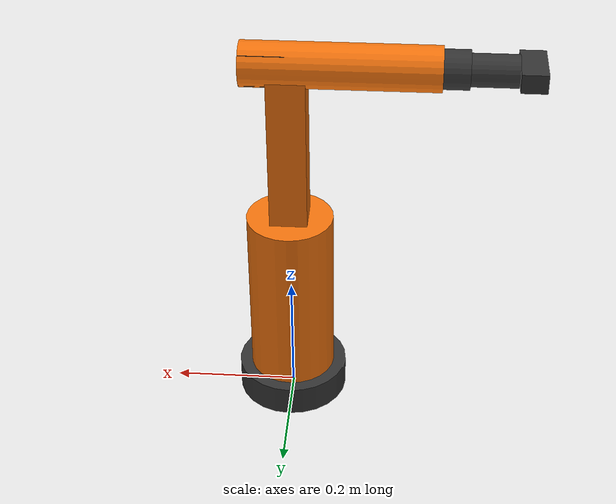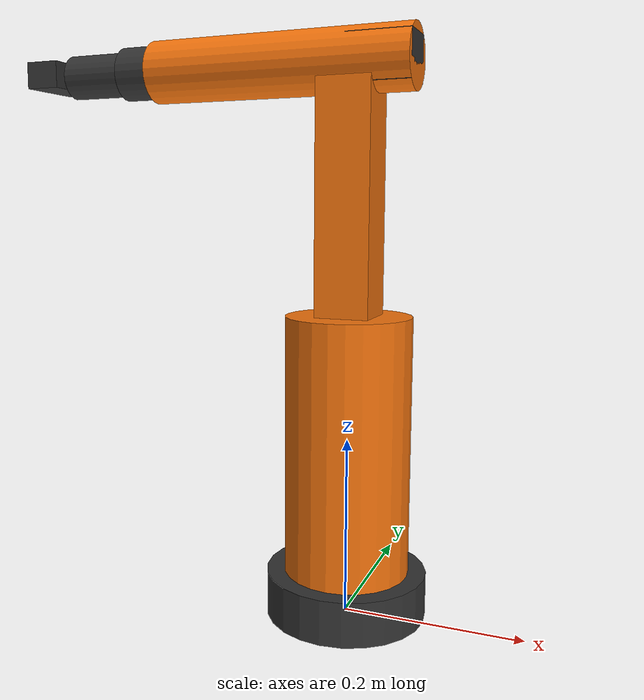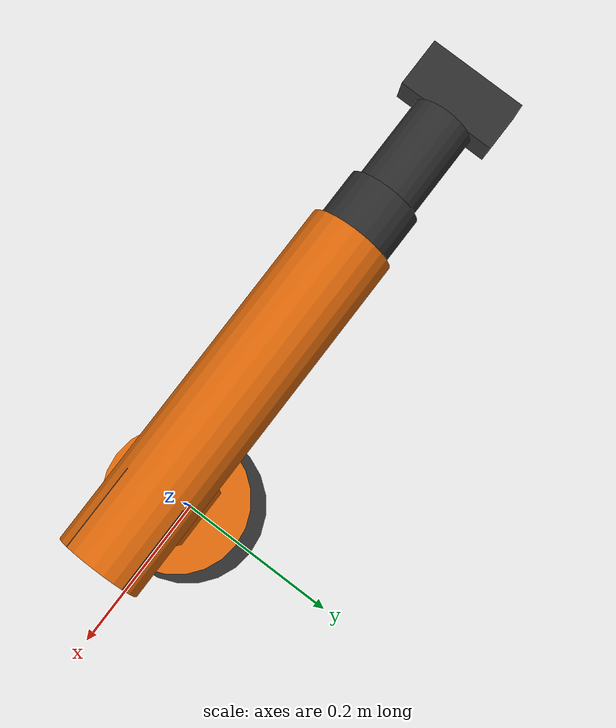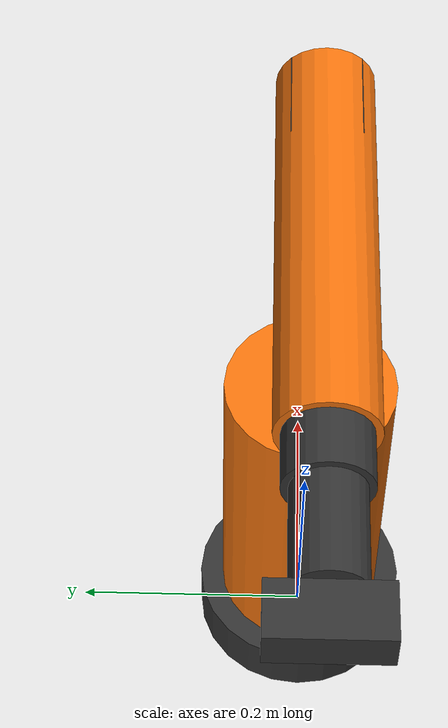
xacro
<?xml version="1.0"?>
<robot name="irb120" xmlns:xacro="http://www.ros.org/wiki/xacro">

  <material name="abb_orange">
    <color rgba="0.95 0.45 0.05 1.0"/>
  </material>
  <material name="dark_grey">
    <color rgba="0.2 0.2 0.2 1.0"/>
  </material>

  <link name="base_link">
    <visual>
      <geometry><cylinder radius="0.09" length="0.05"/></geometry>
      <origin xyz="0 0 0.025" rpy="0 0 0"/>
      <material name="dark_grey"/>
    </visual>
    <collision>
      <geometry><cylinder radius="0.09" length="0.05"/></geometry>
      <origin xyz="0 0 0.025" rpy="0 0 0"/>
    </collision>
    <inertial>
      <mass value="2.0"/>
      <origin xyz="0 0 0.025"/>
      <inertia ixx="0.01" ixy="0" ixz="0" iyy="0.01" iyz="0" izz="0.01"/>
    </inertial>
  </link>

  <link name="link_1">
    <visual>
      <geometry><cylinder radius="0.07" length="0.29"/></geometry>
      <origin xyz="0 0 0.145" rpy="0 0 0"/>
      <material name="abb_orange"/>
    </visual>
    <collision>
      <geometry><cylinder radius="0.07" length="0.29"/></geometry>
      <origin xyz="0 0 0.145" rpy="0 0 0"/>
    </collision>
    <inertial>
      <mass value="3.0"/>
      <origin xyz="0 0 0.145"/>
      <inertia ixx="0.02" ixy="0" ixz="0" iyy="0.02" iyz="0" izz="0.01"/>
    </inertial>
  </link>

  <joint name="joint_1" type="revolute">
    <parent link="base_link"/>
    <child link="link_1"/>
    <origin xyz="0 0 0.05" rpy="0 0 0"/>
    <axis xyz="0 0 1"/>
    <limit lower="-2.87" upper="2.87" effort="50" velocity="4.36"/>
  </joint>

  <link name="link_2">
    <visual>
      <geometry><box size="0.27 0.06 0.06"/></geometry>
      <origin xyz="0.135 0 0" rpy="0 0 0"/>
      <material name="abb_orange"/>
    </visual>
    <collision>
      <geometry><box size="0.27 0.06 0.06"/></geometry>
      <origin xyz="0.135 0 0" rpy="0 0 0"/>
    </collision>
    <inertial>
      <mass value="2.5"/>
      <origin xyz="0.135 0 0"/>
      <inertia ixx="0.01" ixy="0" ixz="0" iyy="0.02" iyz="0" izz="0.02"/>
    </inertial>
  </link>

  <joint name="joint_2" type="revolute">
    <parent link="link_1"/>
    <child link="link_2"/>
    <origin xyz="0 0 0.29" rpy="0 -1.5708 0"/>
    <axis xyz="0 1 0"/>
    <limit lower="-1.919" upper="1.919" effort="50" velocity="4.36"/>
  </joint>

  <link name="link_3">
    <visual>
      <geometry><box size="0.07 0.05 0.05"/></geometry>
      <origin xyz="0.035 0 0" rpy="0 0 0"/>
      <material name="dark_grey"/>
    </visual>
    <collision>
      <geometry><box size="0.07 0.05 0.05"/></geometry>
      <origin xyz="0.035 0 0" rpy="0 0 0"/>
    </collision>
    <inertial>
      <mass value="1.5"/>
      <origin xyz="0.035 0 0"/>
      <inertia ixx="0.005" ixy="0" ixz="0" iyy="0.01" iyz="0" izz="0.01"/>
    </inertial>
  </link>

  <joint name="joint_3" type="revolute">
    <parent link="link_2"/>
    <child link="link_3"/>
    <origin xyz="0.27 0 0" rpy="0 1.5708 0"/>
    <axis xyz="0 1 0"/>
    <limit lower="-1.919" upper="1.222" effort="50" velocity="5.585"/>
  </joint>

  <link name="link_4">
    <visual>
      <geometry><cylinder radius="0.035" length="0.302"/></geometry>
      <origin xyz="0 0 0.151" rpy="0 0 0"/>
      <material name="abb_orange"/>
    </visual>
    <collision>
      <geometry><cylinder radius="0.035" length="0.302"/></geometry>
      <origin xyz="0 0 0.151" rpy="0 0 0"/>
    </collision>
    <inertial>
      <mass value="1.5"/>
      <origin xyz="0 0 0.151"/>
      <inertia ixx="0.01" ixy="0" ixz="0" iyy="0.01" iyz="0" izz="0.005"/>
    </inertial>
  </link>

  <joint name="joint_4" type="revolute">
    <parent link="link_3"/>
    <child link="link_4"/>
    <origin xyz="0.07 0 0" rpy="0 -1.5708 0"/>
    <axis xyz="0 0 1"/>
    <limit lower="-2.79" upper="2.79" effort="20" velocity="7.33"/>
  </joint>

  <link name="link_5">
    <visual>
      <geometry><cylinder radius="0.03" length="0.04"/></geometry>
      <origin xyz="0 0 0.02" rpy="0 0 0"/>
      <material name="dark_grey"/>
    </visual>
    <collision>
      <geometry><cylinder radius="0.03" length="0.04"/></geometry>
      <origin xyz="0 0 0.02" rpy="0 0 0"/>
    </collision>
    <inertial>
      <mass value="0.8"/>
      <origin xyz="0 0 0.02"/>
      <inertia ixx="0.002" ixy="0" ixz="0" iyy="0.002" iyz="0" izz="0.002"/>
    </inertial>
  </link>

  <joint name="joint_5" type="revolute">
    <parent link="link_4"/>
    <child link="link_5"/>
    <origin xyz="0 0 0.302" rpy="0 0 0"/>
    <axis xyz="0 1 0"/>
    <limit lower="-2.094" upper="2.094" effort="20" velocity="7.33"/>
  </joint>

  <link name="link_6">
    <visual>
      <geometry><cylinder radius="0.025" length="0.072"/></geometry>
      <origin xyz="0 0 0.036" rpy="0 0 0"/>
      <material name="dark_grey"/>
    </visual>
    <collision>
      <geometry><cylinder radius="0.025" length="0.072"/></geometry>
      <origin xyz="0 0 0.036" rpy="0 0 0"/>
    </collision>
    <inertial>
      <mass value="0.3"/>
      <origin xyz="0 0 0.036"/>
      <inertia ixx="0.001" ixy="0" ixz="0" iyy="0.001" iyz="0" izz="0.001"/>
    </inertial>
  </link>

  <joint name="joint_6" type="revolute">
    <parent link="link_5"/>
    <child link="link_6"/>
    <origin xyz="0 0 0.04" rpy="0 0 0"/>
    <axis xyz="0 0 1"/>
    <limit lower="-6.98" upper="6.98" effort="20" velocity="7.33"/>
  </joint>

  <link name="gripper">
    <visual>
      <geometry><box size="0.03 0.08 0.04"/></geometry>
      <origin xyz="0 0 0.02" rpy="0 0 0"/>
      <material name="dark_grey"/>
    </visual>
    <collision>
      <geometry><box size="0.03 0.08 0.04"/></geometry>
      <origin xyz="0 0 0.02" rpy="0 0 0"/>
    </collision>
    <inertial>
      <mass value="0.2"/>
      <origin xyz="0 0 0.02"/>
      <inertia ixx="0.0005" ixy="0" ixz="0" iyy="0.0005" iyz="0" izz="0.0005"/>
    </inertial>
  </link>

  <joint name="joint_gripper" type="fixed">
    <parent link="link_6"/>
    <child link="gripper"/>
    <origin xyz="0 0 0.072" rpy="0 0 0"/>
  </joint>

</robot>
